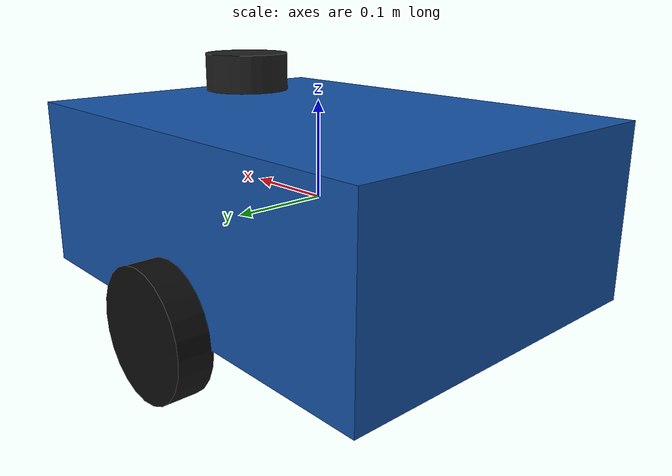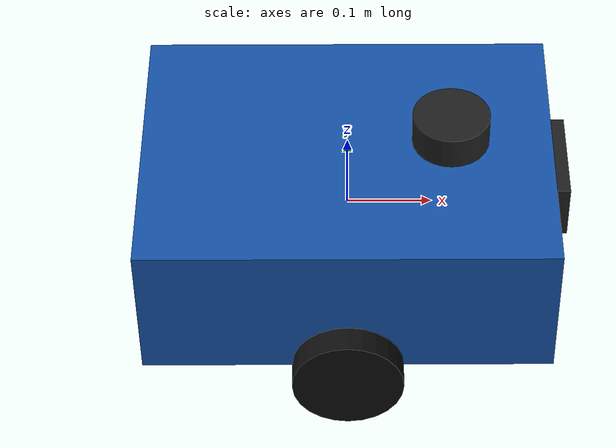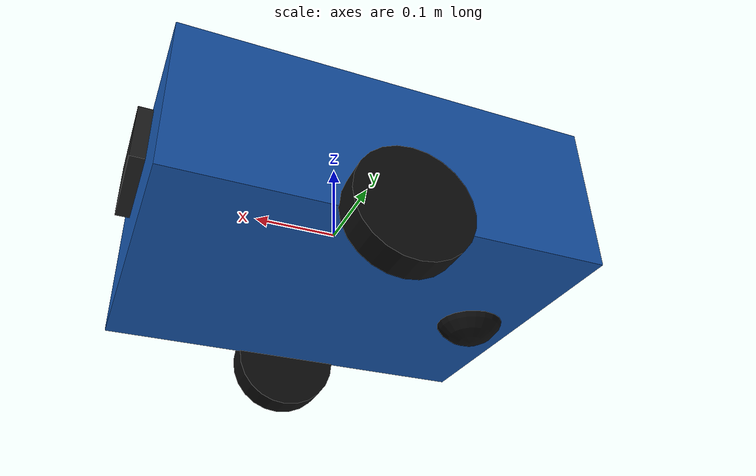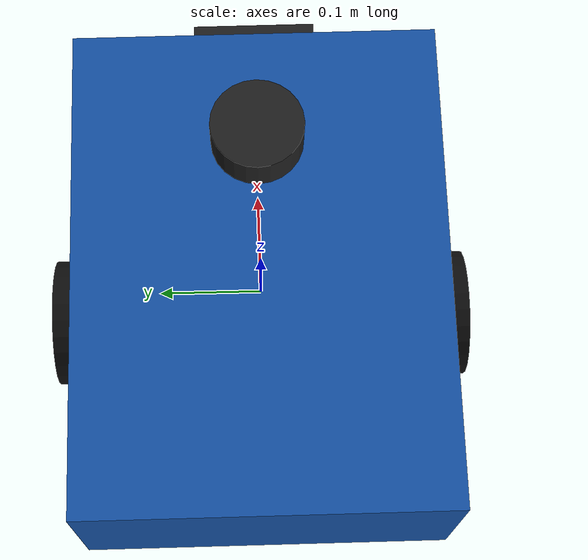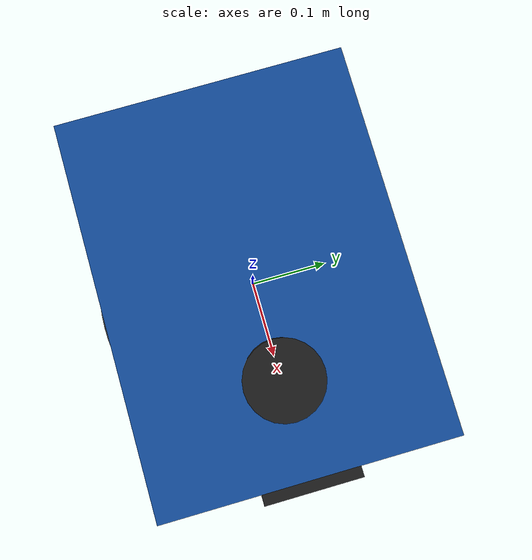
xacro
<?xml version="1.0"?>
<robot xmlns:xacro="http://www.ros.org/wiki/xacro" name="buddy">
  <xacro:arg name="wheel_radius" default="0.065"/>
  <xacro:arg name="wheel_separation" default="0.39"/>
  <xacro:arg name="body_length" default="0.48"/>
  <xacro:arg name="body_width" default="0.36"/>
  <xacro:arg name="body_height" default="0.18"/>
  <xacro:property name="wheel_radius" value="$(arg wheel_radius)"/>
  <xacro:property name="wheel_separation" value="$(arg wheel_separation)"/>
  <xacro:property name="body_length" value="$(arg body_length)"/>
  <xacro:property name="body_width" value="$(arg body_width)"/>
  <xacro:property name="body_height" value="$(arg body_height)"/>

  <material name="buddy_blue"><color rgba="0.08 0.32 0.65 1"/></material>
  <material name="rubber"><color rgba="0.05 0.05 0.05 1"/></material>
  <material name="sensor_black"><color rgba="0.12 0.12 0.12 1"/></material>

  <link name="base_link">
    <inertial><origin xyz="0 0 0"/><mass value="8.0"/>
      <inertia ixx="0.13" ixy="0" ixz="0" iyy="0.19" iyz="0" izz="0.27"/></inertial>
    <visual><geometry><box size="${body_length} ${body_width} ${body_height}"/></geometry><material name="buddy_blue"/></visual>
    <collision><geometry><box size="${body_length} ${body_width} ${body_height}"/></geometry></collision>
  </link>
  <link name="base_footprint"/>
  <joint name="base_footprint_joint" type="fixed"><parent link="base_link"/><child link="base_footprint"/><origin xyz="0 0 ${-(wheel_radius + body_height / 2)}"/></joint>

  <xacro:macro name="drive_wheel" params="name side">
    <link name="${name}_wheel_link">
      <inertial><origin rpy="1.57079632679 0 0"/><mass value="0.35"/><inertia ixx="0.00045" ixy="0" ixz="0" iyy="0.00074" iyz="0" izz="0.00045"/></inertial>
      <visual><origin rpy="1.57079632679 0 0"/><geometry><cylinder radius="${wheel_radius}" length="0.035"/></geometry><material name="rubber"/></visual>
      <collision><origin rpy="1.57079632679 0 0"/><geometry><cylinder radius="${wheel_radius}" length="0.035"/></geometry></collision>
    </link>
    <joint name="${name}_wheel_joint" type="continuous"><parent link="base_link"/><child link="${name}_wheel_link"/><origin xyz="0 ${side * wheel_separation / 2} ${-body_height / 2}" rpy="0 0 0"/><axis xyz="0 1 0"/></joint>
  </xacro:macro>
  <xacro:drive_wheel name="left" side="1"/>
  <xacro:drive_wheel name="right" side="-1"/>

  <link name="caster_link">
    <inertial><mass value="0.12"/><inertia ixx="0.0002" ixy="0" ixz="0" iyy="0.0002" iyz="0" izz="0.0002"/></inertial>
    <visual><geometry><sphere radius="0.045"/></geometry><material name="rubber"/></visual>
    <collision><geometry><sphere radius="0.045"/></geometry></collision>
  </link>
  <joint name="caster_joint" type="continuous"><parent link="base_link"/><child link="caster_link"/><origin xyz="-0.18 0 ${-body_height / 2 + 0.02}"/><axis xyz="0 0 1"/></joint>

  <xacro:macro name="sensor_link" params="name xyz rpy *sensor_geometry">
    <link name="${name}"><visual><origin xyz="0 0 0" rpy="0 0 0"/><geometry><xacro:insert_block name="sensor_geometry"/></geometry><material name="sensor_black"/></visual></link>
    <joint name="${name}_joint" type="fixed"><parent link="base_link"/><child link="${name}"/><origin xyz="${xyz}" rpy="${rpy}"/></joint>
  </xacro:macro>
  <xacro:sensor_link name="lidar_link" xyz="0.12 0 0.12" rpy="0 0 0"><cylinder radius="0.045" length="0.04"/></xacro:sensor_link>
  <xacro:sensor_link name="imu_link" xyz="0 0 0.05" rpy="0 0 0"><box size="0.035 0.035 0.02"/></xacro:sensor_link>
  <xacro:sensor_link name="camera_link" xyz="0.245 0 0.04" rpy="0 0 0"><box size="0.025 0.12 0.07"/></xacro:sensor_link>
  <link name="camera_optical_frame"/>
  <joint name="camera_optical_joint" type="fixed"><parent link="camera_link"/><child link="camera_optical_frame"/><origin rpy="-1.57079632679 0 -1.57079632679"/></joint>
</robot>
